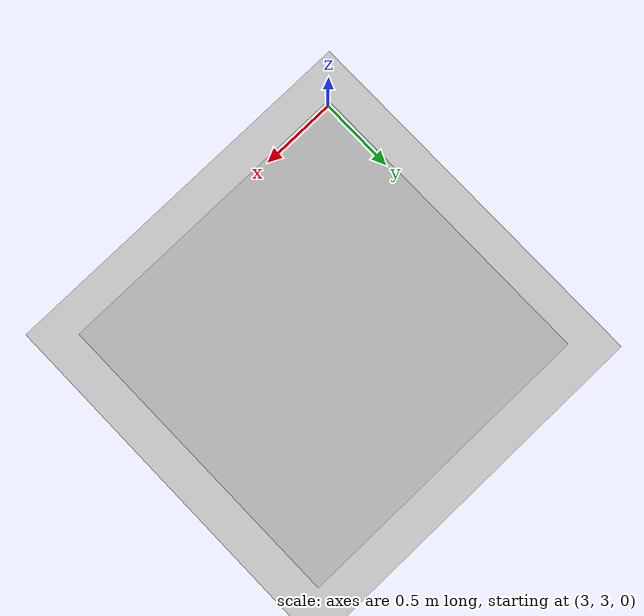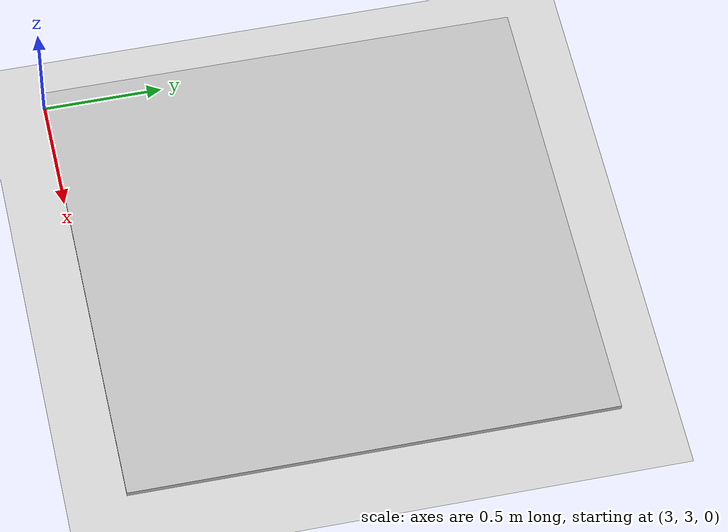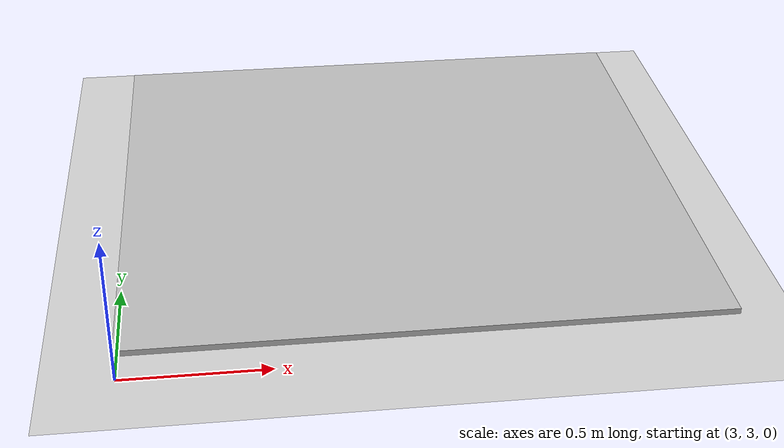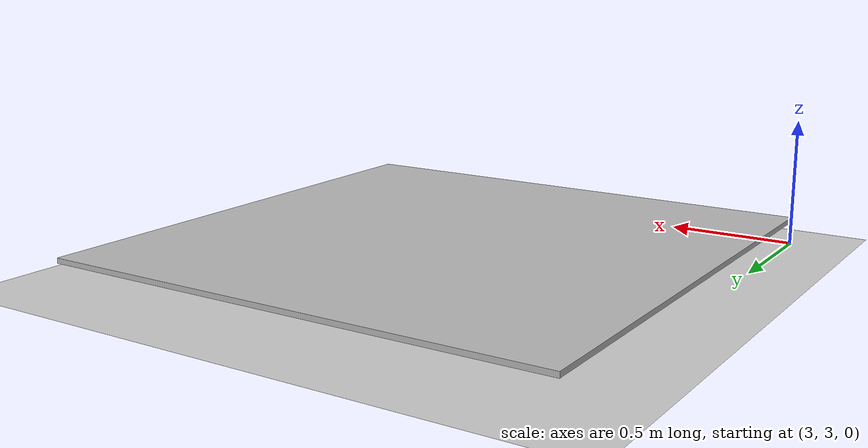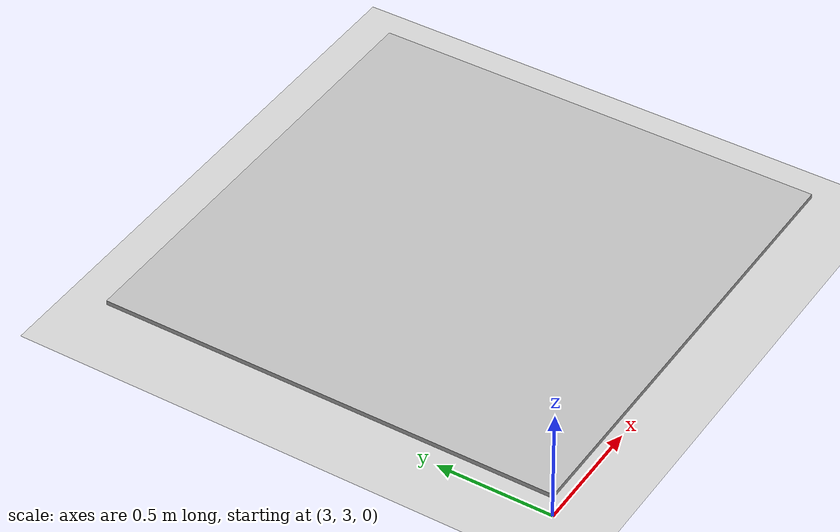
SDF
<?xml version="1.0" ?>
<sdf version="1.5">
  <world name="default">
    <!-- A global light source -->
    <include>
      <uri>model://sun</uri>
    </include>
    <!-- A ground plane -->
    <include>
      <uri>model://ground_plane</uri>
    </include>
    <!-- Add aruco marker -->
    <model name="aruco_marker">
      <include>
      <uri>model://aruco_marker</uri>
      <pose>4 4 0.1 0 0 0</pose>
      </include>
    </model>
  </world>
</sdf>

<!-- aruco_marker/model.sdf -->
<sdf version="1.5">
  <model name="aruco_marker">
    <static>true</static>
    <pose>0 0 0 0 0 0</pose>
    <link name="link">

    <collision name="collision">
    <pose>0 0 0 0 0 0</pose>
      <geometry>
        <box>
          <size>2 2 0.01</size>
        </box>
      </geometry>
    </collision>

    <visual name="visual">
      <geometry>
        <mesh>
          <uri>model://aruco_marker/meshes/model.dae</uri>
        </mesh>
      </geometry>
    </visual>

  </link>
</model>

</sdf>
